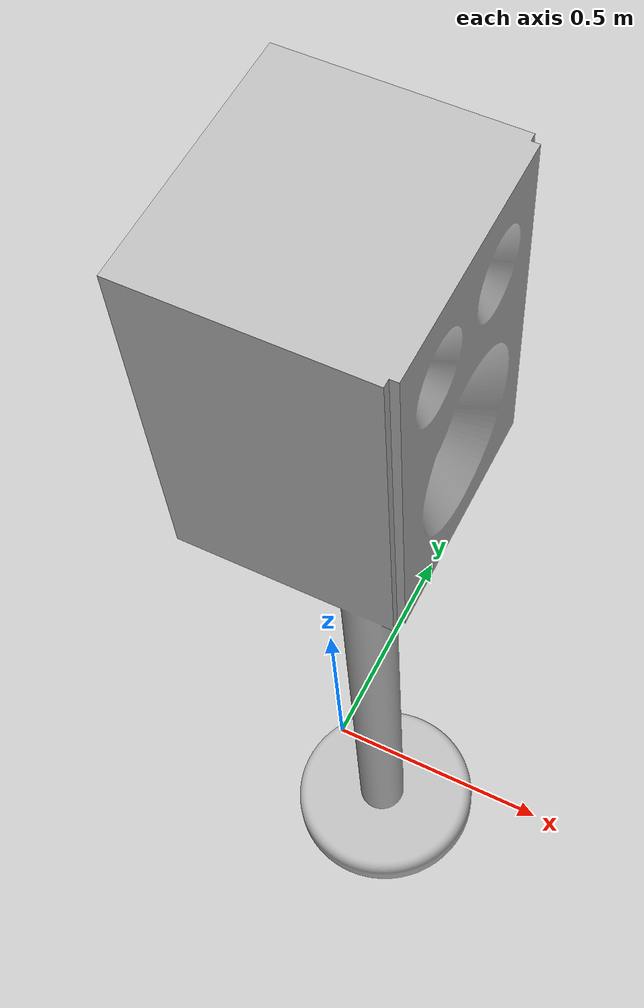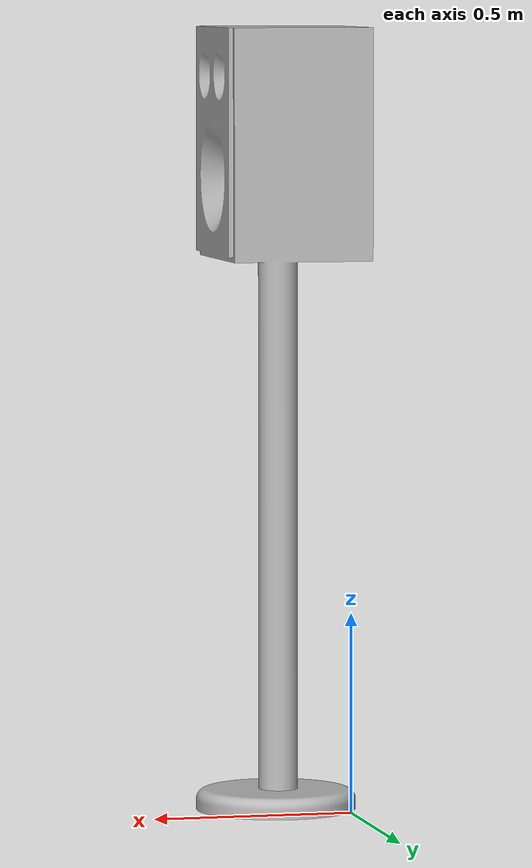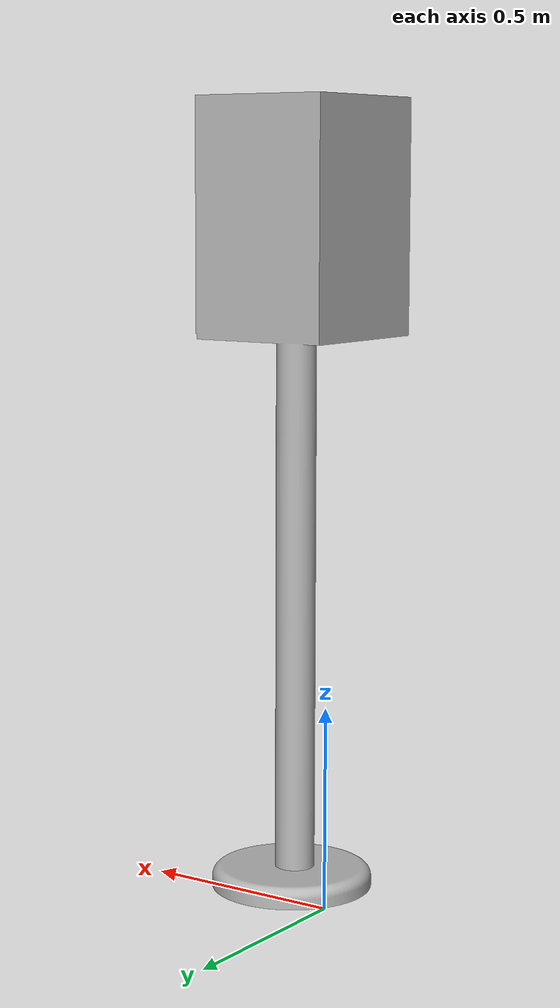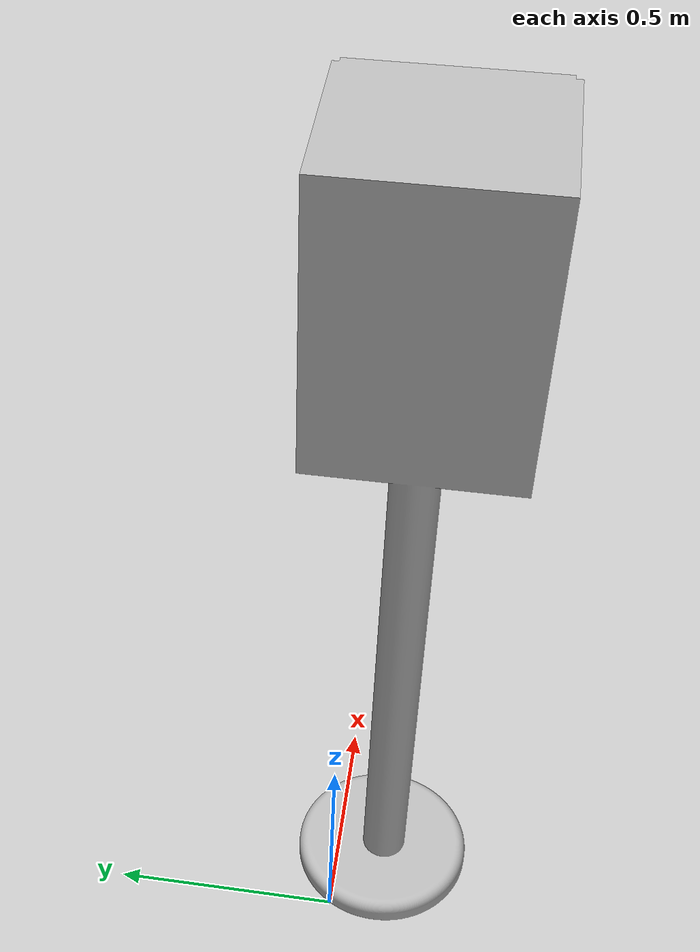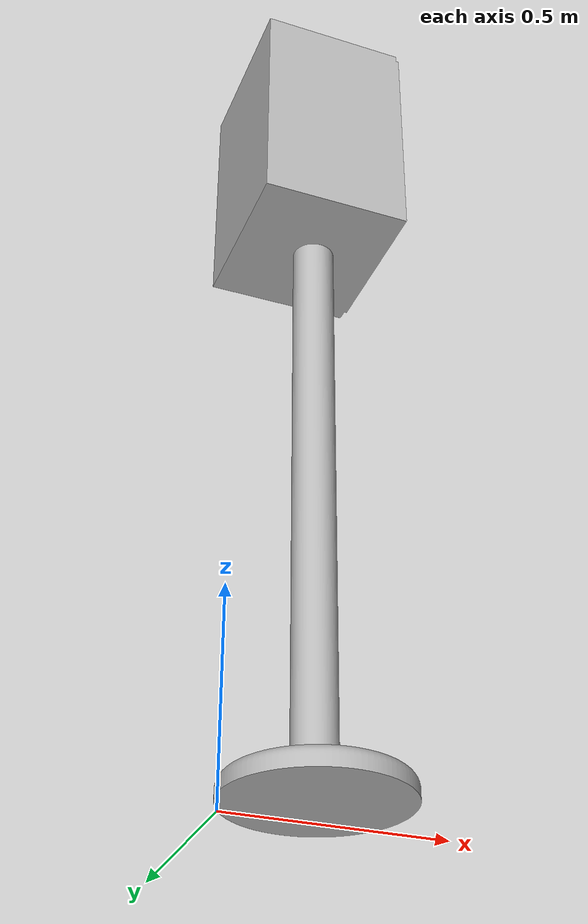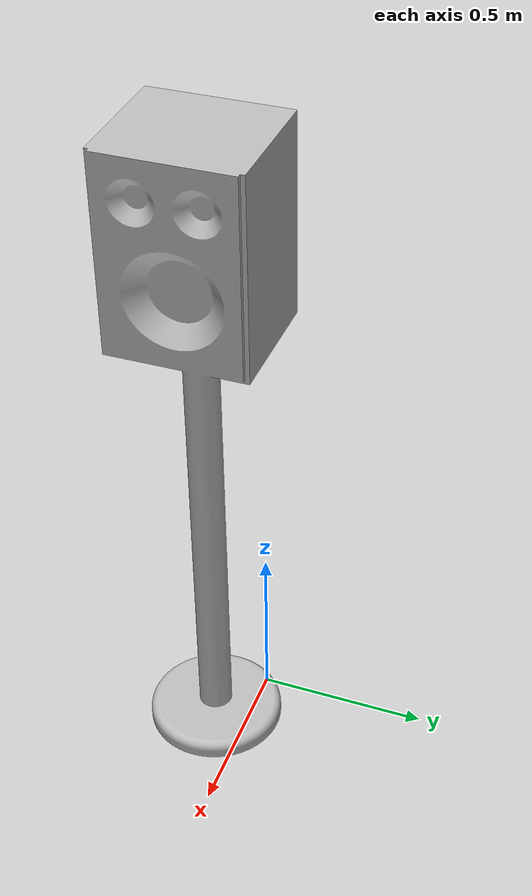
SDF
<?xml version="1.0" ?>
<sdf version="1.6">
  <model name="SpeakerPole">
    <link name="link">
      <inertial>
        <mass>1</mass>
      </inertial>
      <collision name="collision">
        <geometry>
          <mesh>
            <uri>model://SpeakerPole/meshes/speakerpole.dae</uri>
            <scale>1 1 1</scale>
          </mesh>
        </geometry>
      </collision>
      <visual name="visual">
	    <geometry>
          <mesh>
           <uri>model://SpeakerPole/meshes/speakerpole.dae</uri>
          </mesh>
        </geometry>
        <meta>
          <layer>1</layer>
        </meta>
      </visual>
    </link>
 <static>1</static>
  </model>
</sdf>
